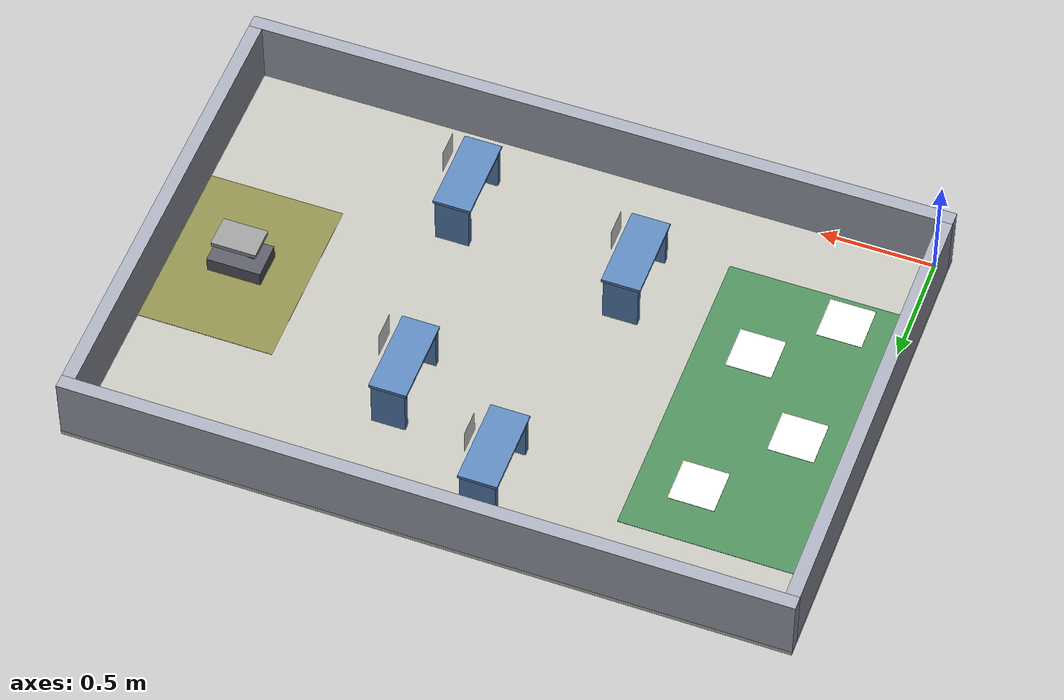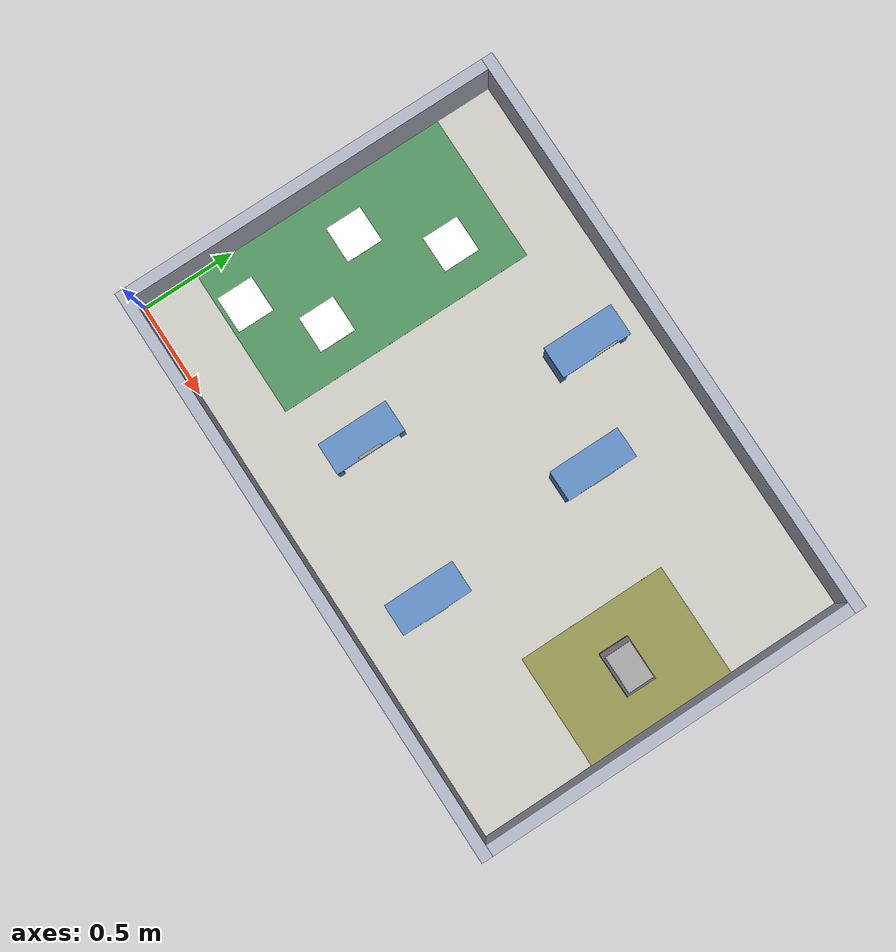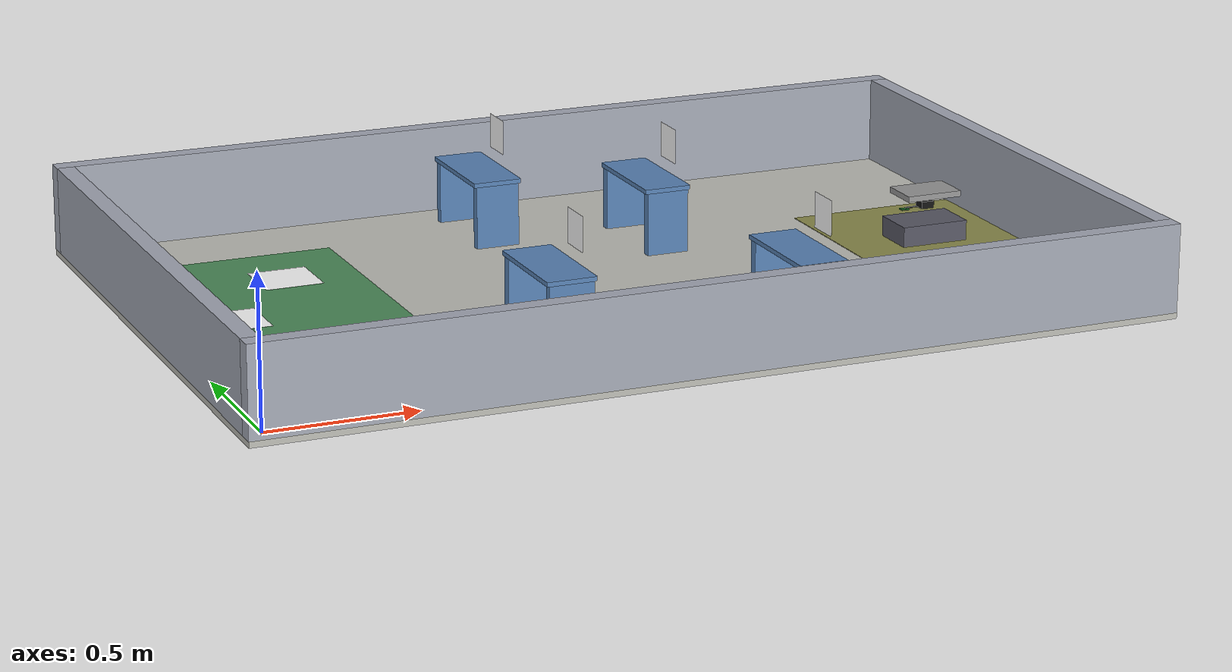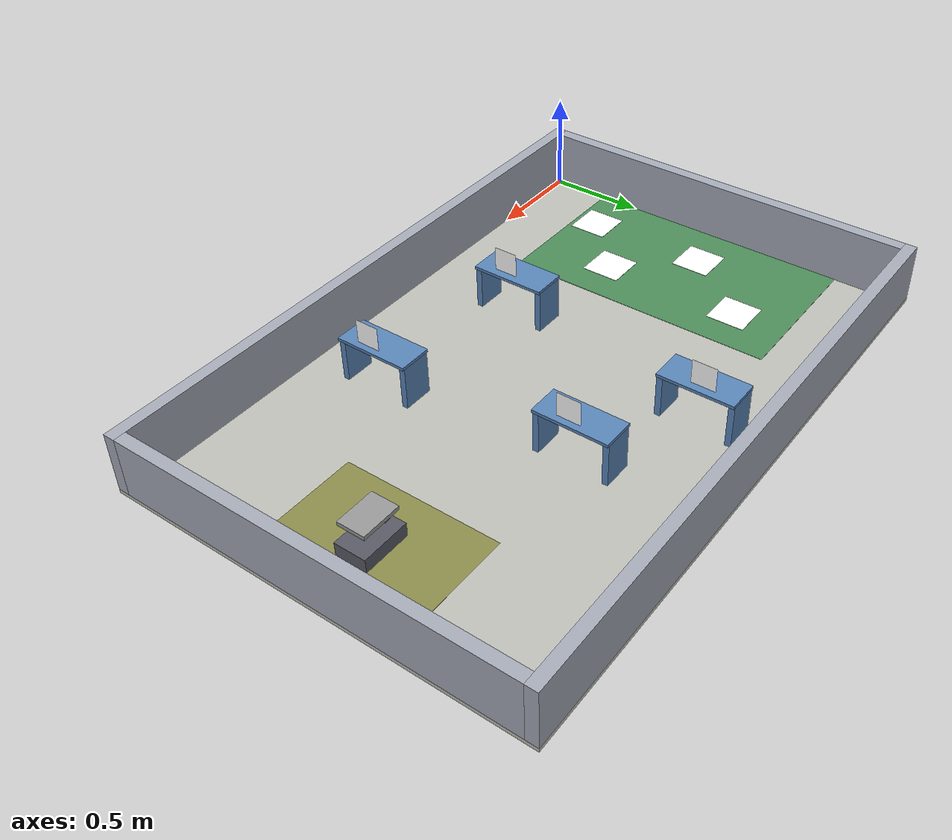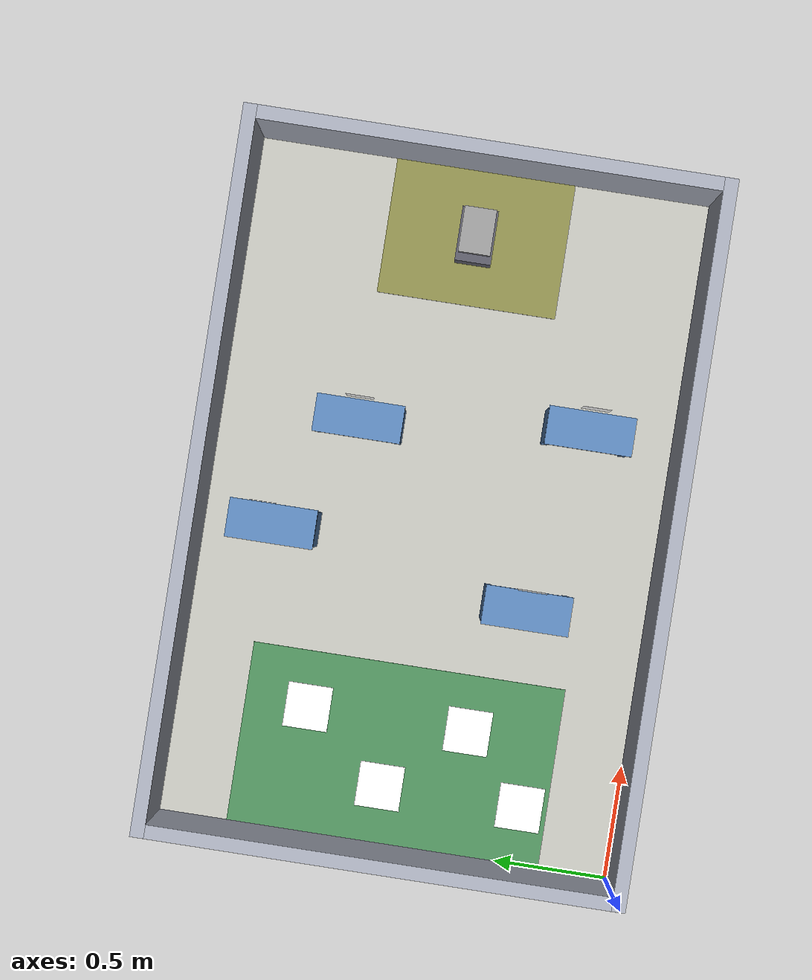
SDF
<?xml version='1.0' encoding='utf-8'?>
<sdf version="1.9">
  <world name="rack_world">
    <gravity>0 0 -9.8</gravity>
    <physics name="physics" type="ignored">
      <max_step_size>0.002</max_step_size>
      <real_time_factor>1</real_time_factor>
    </physics>
    <plugin filename="gz-sim-physics-system" name="gz::sim::systems::Physics" />
    <plugin filename="gz-sim-user-commands-system" name="gz::sim::systems::UserCommands" />
    <plugin filename="gz-sim-scene-broadcaster-system" name="gz::sim::systems::SceneBroadcaster" />
    <plugin filename="gz-sim-sensors-system" name="gz::sim::systems::Sensors" />
    <light name="sun" type="directional">
      <cast_shadows>false</cast_shadows>
      <pose>0 0 10 0 0 0</pose>
      <diffuse>.9 .9 .9 1</diffuse>
      <specular>.1 .1 .1 1</specular>
      <direction>0 0 -1</direction>
    </light>
    <scene>
      <ambient>.8 .8 .8 1</ambient>
      <background>.7 .7 .7 1</background>
      <grid>false</grid>
    </scene>
    <model name="ground">
      <static>true</static>
      <link name="link">
        <collision name="ground_collision">
          <pose>1.51 1.0 -0.01 0 0 0</pose>
          <geometry>
            <box>
              <size>3.14 2.12 0.02</size>
            </box>
          </geometry>
          <surface>
            <contact>
              <collide_bitmask>0xFFFF</collide_bitmask>
            </contact>
          </surface>
        </collision>
        <visual name="ground_visual">
          <pose>1.51 1.0 -0.01 0 0 0</pose>
          <geometry>
            <box>
              <size>3.14 2.12 0.02</size>
            </box>
          </geometry>
          <material>
            <ambient>.75 .75 .72 1</ambient>
            <diffuse>.75 .75 .72 1</diffuse>
          </material>
        </visual>
      </link>
    </model>
    <model name="wall_n">
      <static>true</static>
      <link name="link">
        <collision name="wall_n_collision">
          <pose>1.51 2.03 0.15 0 0 0</pose>
          <geometry>
            <box>
              <size>3.14 0.06 0.3</size>
            </box>
          </geometry>
          <surface>
            <contact>
              <collide_bitmask>0xFFFF</collide_bitmask>
            </contact>
          </surface>
        </collision>
        <visual name="wall_n_visual">
          <pose>1.51 2.03 0.15 0 0 0</pose>
          <geometry>
            <box>
              <size>3.14 0.06 0.3</size>
            </box>
          </geometry>
          <material>
            <ambient>.65 .67 .72 1</ambient>
            <diffuse>.65 .67 .72 1</diffuse>
          </material>
        </visual>
      </link>
    </model>
    <model name="wall_s">
      <static>true</static>
      <link name="link">
        <collision name="wall_s_collision">
          <pose>1.51 -0.03 0.15 0 0 0</pose>
          <geometry>
            <box>
              <size>3.14 0.06 0.3</size>
            </box>
          </geometry>
          <surface>
            <contact>
              <collide_bitmask>0xFFFF</collide_bitmask>
            </contact>
          </surface>
        </collision>
        <visual name="wall_s_visual">
          <pose>1.51 -0.03 0.15 0 0 0</pose>
          <geometry>
            <box>
              <size>3.14 0.06 0.3</size>
            </box>
          </geometry>
          <material>
            <ambient>.65 .67 .72 1</ambient>
            <diffuse>.65 .67 .72 1</diffuse>
          </material>
        </visual>
      </link>
    </model>
    <model name="wall_w">
      <static>true</static>
      <link name="link">
        <collision name="wall_w_collision">
          <pose>-0.03 1.0 0.15 0 0 0</pose>
          <geometry>
            <box>
              <size>0.06 2.0 0.3</size>
            </box>
          </geometry>
          <surface>
            <contact>
              <collide_bitmask>0xFFFF</collide_bitmask>
            </contact>
          </surface>
        </collision>
        <visual name="wall_w_visual">
          <pose>-0.03 1.0 0.15 0 0 0</pose>
          <geometry>
            <box>
              <size>0.06 2.0 0.3</size>
            </box>
          </geometry>
          <material>
            <ambient>.65 .67 .72 1</ambient>
            <diffuse>.65 .67 .72 1</diffuse>
          </material>
        </visual>
      </link>
    </model>
    <model name="wall_e">
      <static>true</static>
      <link name="link">
        <collision name="wall_e_collision">
          <pose>3.05 1.0 0.15 0 0 0</pose>
          <geometry>
            <box>
              <size>0.06 2.0 0.3</size>
            </box>
          </geometry>
          <surface>
            <contact>
              <collide_bitmask>0xFFFF</collide_bitmask>
            </contact>
          </surface>
        </collision>
        <visual name="wall_e_visual">
          <pose>3.05 1.0 0.15 0 0 0</pose>
          <geometry>
            <box>
              <size>0.06 2.0 0.3</size>
            </box>
          </geometry>
          <material>
            <ambient>.65 .67 .72 1</ambient>
            <diffuse>.65 .67 .72 1</diffuse>
          </material>
        </visual>
      </link>
    </model>
    <model name="start_zone">
      <static>true</static>
      <link name="link">
        <visual name="start_zone_visual">
          <pose>2.7199999999999998 1.0 0.001 0 0 0</pose>
          <geometry>
            <box>
              <size>0.6000000000000001 0.7999999999999999 0.002</size>
            </box>
          </geometry>
          <material>
            <ambient>.55 .55 .3 1</ambient>
            <diffuse>.55 .55 .3 1</diffuse>
          </material>
        </visual>
      </link>
    </model>
    <model name="end_zone">
      <static>true</static>
      <link name="link">
        <visual name="end_zone_visual">
          <pose>0.4 1.0 0.001 0 0 0</pose>
          <geometry>
            <box>
              <size>0.8 1.4 0.002</size>
            </box>
          </geometry>
          <material>
            <ambient>.3 .55 .35 1</ambient>
            <diffuse>.3 .55 .35 1</diffuse>
          </material>
        </visual>
      </link>
    </model>
    <model name="drop_a">
      <static>true</static>
      <link name="link">
        <visual name="drop_a_visual">
          <pose>0.25 0.42 0.002 0 0 0</pose>
          <geometry>
            <box>
              <size>0.2 0.2 0.002</size>
            </box>
          </geometry>
          <material>
            <ambient>1 1 1 1</ambient>
            <diffuse>1 1 1 1</diffuse>
          </material>
        </visual>
      </link>
    </model>
    <model name="drop_b">
      <static>true</static>
      <link name="link">
        <visual name="drop_b_visual">
          <pose>0.25 1.05 0.002 0 0 0</pose>
          <geometry>
            <box>
              <size>0.2 0.2 0.002</size>
            </box>
          </geometry>
          <material>
            <ambient>1 1 1 1</ambient>
            <diffuse>1 1 1 1</diffuse>
          </material>
        </visual>
      </link>
    </model>
    <model name="drop_c">
      <static>true</static>
      <link name="link">
        <visual name="drop_c_visual">
          <pose>0.55 0.7 0.002 0 0 0</pose>
          <geometry>
            <box>
              <size>0.2 0.2 0.002</size>
            </box>
          </geometry>
          <material>
            <ambient>1 1 1 1</ambient>
            <diffuse>1 1 1 1</diffuse>
          </material>
        </visual>
      </link>
    </model>
    <model name="drop_d">
      <static>true</static>
      <link name="link">
        <visual name="drop_d_visual">
          <pose>0.55 1.42 0.002 0 0 0</pose>
          <geometry>
            <box>
              <size>0.2 0.2 0.002</size>
            </box>
          </geometry>
          <material>
            <ambient>1 1 1 1</ambient>
            <diffuse>1 1 1 1</diffuse>
          </material>
        </visual>
      </link>
    </model>
    <model name="rack_a">
      <pose>1.1360000000000001 0.54 0 0 0 0</pose>
      <static>true</static>
      <link name="top">
        <pose>0 0 0.225 0 0 0</pose>
        <gravity>false</gravity>
        <inertial>
          <mass>1.0</mass>
          <inertia>
            <ixx>0.01192575</ixx>
            <iyy>0.0024270833333333375</iyy>
            <izz>0.014315333333333338</izz>
            <ixy>0</ixy>
            <ixz>0</ixz>
            <iyz>0</iyz>
          </inertia>
        </inertial>
        <collision name="top_collision">
          <pose>0 0 0 0 0 0</pose>
          <geometry>
            <box>
              <size>0.17000000000000015 0.378 0.015</size>
            </box>
          </geometry>
          <surface>
            <contact>
              <collide_bitmask>0x0002</collide_bitmask>
            </contact>
          </surface>
        </collision>
        <visual name="top_visual">
          <pose>0 0 0 0 0 0</pose>
          <geometry>
            <box>
              <size>0.17000000000000015 0.378 0.015</size>
            </box>
          </geometry>
          <material>
            <ambient>.35 .52 .72 1</ambient>
            <diffuse>.35 .52 .72 1</diffuse>
          </material>
        </visual>
      </link>
      <link name="leg_0">
        <pose>0 -0.17400000000000004 0.10875000000000001 0 0 0</pose>
        <gravity>false</gravity>
        <inertial>
          <mass>0.2</mass>
          <inertia>
            <ixx>0.0008034375000000003</ixx>
            <iyy>0.001178587500000001</iyy>
            <izz>0.00040515000000000077</izz>
            <ixy>0</ixy>
            <ixz>0</ixz>
            <iyz>0</iyz>
          </inertia>
        </inertial>
        <collision name="leg_0_collision">
          <pose>0 0 0 0 0 0</pose>
          <geometry>
            <box>
              <size>0.15300000000000014 0.03 0.21750000000000003</size>
            </box>
          </geometry>
          <surface>
            <contact>
              <collide_bitmask>0x0002</collide_bitmask>
            </contact>
          </surface>
        </collision>
        <visual name="leg_0_visual">
          <pose>0 0 0 0 0 0</pose>
          <geometry>
            <box>
              <size>0.15300000000000014 0.03 0.21750000000000003</size>
            </box>
          </geometry>
          <material>
            <ambient>.35 .52 .72 1</ambient>
            <diffuse>.35 .52 .72 1</diffuse>
          </material>
        </visual>
      </link>
      <joint name="top_leg_0_fixed" type="fixed">
        <parent>top</parent>
        <child>leg_0</child>
      </joint>
      <link name="leg_1">
        <pose>0 0.17399999999999993 0.10875000000000001 0 0 0</pose>
        <gravity>false</gravity>
        <inertial>
          <mass>0.2</mass>
          <inertia>
            <ixx>0.0008034375000000003</ixx>
            <iyy>0.001178587500000001</iyy>
            <izz>0.00040515000000000077</izz>
            <ixy>0</ixy>
            <ixz>0</ixz>
            <iyz>0</iyz>
          </inertia>
        </inertial>
        <collision name="leg_1_collision">
          <pose>0 0 0 0 0 0</pose>
          <geometry>
            <box>
              <size>0.15300000000000014 0.03 0.21750000000000003</size>
            </box>
          </geometry>
          <surface>
            <contact>
              <collide_bitmask>0x0002</collide_bitmask>
            </contact>
          </surface>
        </collision>
        <visual name="leg_1_visual">
          <pose>0 0 0 0 0 0</pose>
          <geometry>
            <box>
              <size>0.15300000000000014 0.03 0.21750000000000003</size>
            </box>
          </geometry>
          <material>
            <ambient>.35 .52 .72 1</ambient>
            <diffuse>.35 .52 .72 1</diffuse>
          </material>
        </visual>
      </link>
      <joint name="top_leg_1_fixed" type="fixed">
        <parent>top</parent>
        <child>leg_1</child>
      </joint>
      <link name="qr">
        <pose>0.08899999999999997 0.0 0.3325 0 0 0</pose>
        <gravity>false</gravity>
        <inertial>
          <mass>0.02</mass>
          <inertia>
            <ixx>4.8e-05</ixx>
            <iyy>2.400666666666667e-05</iyy>
            <izz>2.400666666666667e-05</izz>
            <ixy>0</ixy>
            <ixz>0</ixz>
            <iyz>0</iyz>
          </inertia>
        </inertial>
        <visual name="qr_code">
          <geometry>
            <plane>
              <normal>1 0 0</normal>
              <size>0.12 0.12</size>
            </plane>
          </geometry>
          <material>
            <ambient>1 1 1 1</ambient>
            <diffuse>1 1 1 1</diffuse>
            <pbr>
              <metal>
                <albedo_map>../materials/qr_a.png</albedo_map>
                <metalness>0</metalness>
                <roughness>1</roughness>
              </metal>
            </pbr>
          </material>
        </visual>
      </link>
      <joint name="top_qr_fixed" type="fixed">
        <parent>top</parent>
        <child>qr</child>
      </joint>
    </model>
    <model name="rack_b">
      <pose>1.838 1.3795000000000002 0 0 0 0</pose>
      <static>true</static>
      <link name="top">
        <pose>0 0 0.225 0 0 0</pose>
        <gravity>false</gravity>
        <inertial>
          <mass>1.0</mass>
          <inertia>
            <ixx>0.012115500000000001</ixx>
            <iyy>0.0022600833333333314</iyy>
            <izz>0.014338083333333333</izz>
            <ixy>0</ixy>
            <ixz>0</ixz>
            <iyz>0</iyz>
          </inertia>
        </inertial>
        <collision name="top_collision">
          <pose>0 0 0 0 0 0</pose>
          <geometry>
            <box>
              <size>0.16399999999999992 0.381 0.015</size>
            </box>
          </geometry>
          <surface>
            <contact>
              <collide_bitmask>0x0002</collide_bitmask>
            </contact>
          </surface>
        </collision>
        <visual name="top_visual">
          <pose>0 0 0 0 0 0</pose>
          <geometry>
            <box>
              <size>0.16399999999999992 0.381 0.015</size>
            </box>
          </geometry>
          <material>
            <ambient>.35 .52 .72 1</ambient>
            <diffuse>.35 .52 .72 1</diffuse>
          </material>
        </visual>
      </link>
      <link name="leg_0">
        <pose>0 -0.1755000000000002 0.10875000000000001 0 0 0</pose>
        <gravity>false</gravity>
        <inertial>
          <mass>0.2</mass>
          <inertia>
            <ixx>0.0008034375000000003</ixx>
            <iyy>0.0011515335000000001</iyy>
            <izz>0.00037809599999999964</izz>
            <ixy>0</ixy>
            <ixz>0</ixz>
            <iyz>0</iyz>
          </inertia>
        </inertial>
        <collision name="leg_0_collision">
          <pose>0 0 0 0 0 0</pose>
          <geometry>
            <box>
              <size>0.14759999999999993 0.03 0.21750000000000003</size>
            </box>
          </geometry>
          <surface>
            <contact>
              <collide_bitmask>0x0002</collide_bitmask>
            </contact>
          </surface>
        </collision>
        <visual name="leg_0_visual">
          <pose>0 0 0 0 0 0</pose>
          <geometry>
            <box>
              <size>0.14759999999999993 0.03 0.21750000000000003</size>
            </box>
          </geometry>
          <material>
            <ambient>.35 .52 .72 1</ambient>
            <diffuse>.35 .52 .72 1</diffuse>
          </material>
        </visual>
      </link>
      <joint name="top_leg_0_fixed" type="fixed">
        <parent>top</parent>
        <child>leg_0</child>
      </joint>
      <link name="leg_1">
        <pose>0 0.1755 0.10875000000000001 0 0 0</pose>
        <gravity>false</gravity>
        <inertial>
          <mass>0.2</mass>
          <inertia>
            <ixx>0.0008034375000000003</ixx>
            <iyy>0.0011515335000000001</iyy>
            <izz>0.00037809599999999964</izz>
            <ixy>0</ixy>
            <ixz>0</ixz>
            <iyz>0</iyz>
          </inertia>
        </inertial>
        <collision name="leg_1_collision">
          <pose>0 0 0 0 0 0</pose>
          <geometry>
            <box>
              <size>0.14759999999999993 0.03 0.21750000000000003</size>
            </box>
          </geometry>
          <surface>
            <contact>
              <collide_bitmask>0x0002</collide_bitmask>
            </contact>
          </surface>
        </collision>
        <visual name="leg_1_visual">
          <pose>0 0 0 0 0 0</pose>
          <geometry>
            <box>
              <size>0.14759999999999993 0.03 0.21750000000000003</size>
            </box>
          </geometry>
          <material>
            <ambient>.35 .52 .72 1</ambient>
            <diffuse>.35 .52 .72 1</diffuse>
          </material>
        </visual>
      </link>
      <joint name="top_leg_1_fixed" type="fixed">
        <parent>top</parent>
        <child>leg_1</child>
      </joint>
      <link name="qr">
        <pose>0.08599999999999985 -2.220446049250313e-16 0.3325 0 0 0</pose>
        <gravity>false</gravity>
        <inertial>
          <mass>0.02</mass>
          <inertia>
            <ixx>4.8e-05</ixx>
            <iyy>2.400666666666667e-05</iyy>
            <izz>2.400666666666667e-05</izz>
            <ixy>0</ixy>
            <ixz>0</ixz>
            <iyz>0</iyz>
          </inertia>
        </inertial>
        <visual name="qr_code">
          <geometry>
            <plane>
              <normal>1 0 0</normal>
              <size>0.12 0.12</size>
            </plane>
          </geometry>
          <material>
            <ambient>1 1 1 1</ambient>
            <diffuse>1 1 1 1</diffuse>
            <pbr>
              <metal>
                <albedo_map>../materials/qr_b.png</albedo_map>
                <metalness>0</metalness>
                <roughness>1</roughness>
              </metal>
            </pbr>
          </material>
        </visual>
      </link>
      <joint name="top_qr_fixed" type="fixed">
        <parent>top</parent>
        <child>qr</child>
      </joint>
    </model>
    <model name="rack_c">
      <pose>1.337 1.6795 0 0 0 0</pose>
      <static>true</static>
      <link name="top">
        <pose>0 0 0.225 0 0 0</pose>
        <gravity>false</gravity>
        <inertial>
          <mass>1.0</mass>
          <inertia>
            <ixx>0.012115500000000001</ixx>
            <iyy>0.002427083333333331</iyy>
            <izz>0.014505083333333333</izz>
            <ixy>0</ixy>
            <ixz>0</ixz>
            <iyz>0</iyz>
          </inertia>
        </inertial>
        <collision name="top_collision">
          <pose>0 0 0 0 0 0</pose>
          <geometry>
            <box>
              <size>0.16999999999999993 0.381 0.015</size>
            </box>
          </geometry>
          <surface>
            <contact>
              <collide_bitmask>0x0002</collide_bitmask>
            </contact>
          </surface>
        </collision>
        <visual name="top_visual">
          <pose>0 0 0 0 0 0</pose>
          <geometry>
            <box>
              <size>0.16999999999999993 0.381 0.015</size>
            </box>
          </geometry>
          <material>
            <ambient>.35 .52 .72 1</ambient>
            <diffuse>.35 .52 .72 1</diffuse>
          </material>
        </visual>
      </link>
      <link name="leg_0">
        <pose>0 -0.1755 0.10875000000000001 0 0 0</pose>
        <gravity>false</gravity>
        <inertial>
          <mass>0.2</mass>
          <inertia>
            <ixx>0.0008034375000000003</ixx>
            <iyy>0.0011785875</iyy>
            <izz>0.00040514999999999974</izz>
            <ixy>0</ixy>
            <ixz>0</ixz>
            <iyz>0</iyz>
          </inertia>
        </inertial>
        <collision name="leg_0_collision">
          <pose>0 0 0 0 0 0</pose>
          <geometry>
            <box>
              <size>0.15299999999999994 0.03 0.21750000000000003</size>
            </box>
          </geometry>
          <surface>
            <contact>
              <collide_bitmask>0x0002</collide_bitmask>
            </contact>
          </surface>
        </collision>
        <visual name="leg_0_visual">
          <pose>0 0 0 0 0 0</pose>
          <geometry>
            <box>
              <size>0.15299999999999994 0.03 0.21750000000000003</size>
            </box>
          </geometry>
          <material>
            <ambient>.35 .52 .72 1</ambient>
            <diffuse>.35 .52 .72 1</diffuse>
          </material>
        </visual>
      </link>
      <joint name="top_leg_0_fixed" type="fixed">
        <parent>top</parent>
        <child>leg_0</child>
      </joint>
      <link name="leg_1">
        <pose>0 0.1755000000000002 0.10875000000000001 0 0 0</pose>
        <gravity>false</gravity>
        <inertial>
          <mass>0.2</mass>
          <inertia>
            <ixx>0.0008034375000000003</ixx>
            <iyy>0.0011785875</iyy>
            <izz>0.00040514999999999974</izz>
            <ixy>0</ixy>
            <ixz>0</ixz>
            <iyz>0</iyz>
          </inertia>
        </inertial>
        <collision name="leg_1_collision">
          <pose>0 0 0 0 0 0</pose>
          <geometry>
            <box>
              <size>0.15299999999999994 0.03 0.21750000000000003</size>
            </box>
          </geometry>
          <surface>
            <contact>
              <collide_bitmask>0x0002</collide_bitmask>
            </contact>
          </surface>
        </collision>
        <visual name="leg_1_visual">
          <pose>0 0 0 0 0 0</pose>
          <geometry>
            <box>
              <size>0.15299999999999994 0.03 0.21750000000000003</size>
            </box>
          </geometry>
          <material>
            <ambient>.35 .52 .72 1</ambient>
            <diffuse>.35 .52 .72 1</diffuse>
          </material>
        </visual>
      </link>
      <joint name="top_leg_1_fixed" type="fixed">
        <parent>top</parent>
        <child>leg_1</child>
      </joint>
      <link name="qr">
        <pose>0.08899999999999997 0.04049999999999998 0.3325 0 0 0</pose>
        <gravity>false</gravity>
        <inertial>
          <mass>0.02</mass>
          <inertia>
            <ixx>4.8e-05</ixx>
            <iyy>2.400666666666667e-05</iyy>
            <izz>2.400666666666667e-05</izz>
            <ixy>0</ixy>
            <ixz>0</ixz>
            <iyz>0</iyz>
          </inertia>
        </inertial>
        <visual name="qr_code">
          <geometry>
            <plane>
              <normal>1 0 0</normal>
              <size>0.12 0.12</size>
            </plane>
          </geometry>
          <material>
            <ambient>1 1 1 1</ambient>
            <diffuse>1 1 1 1</diffuse>
            <pbr>
              <metal>
                <albedo_map>../materials/qr_c.png</albedo_map>
                <metalness>0</metalness>
                <roughness>1</roughness>
              </metal>
            </pbr>
          </material>
        </visual>
      </link>
      <joint name="top_qr_fixed" type="fixed">
        <parent>top</parent>
        <child>qr</child>
      </joint>
    </model>
    <model name="rack_d">
      <pose>1.9365 0.39 0 0 0 0</pose>
      <static>true</static>
      <link name="top">
        <pose>0 0 0.225 0 0 0</pose>
        <gravity>false</gravity>
        <inertial>
          <mass>1.0</mass>
          <inertia>
            <ixx>0.011925749999999997</ixx>
            <iyy>0.0023428333333333344</iyy>
            <izz>0.01423108333333333</izz>
            <ixy>0</ixy>
            <ixz>0</ixz>
            <iyz>0</iyz>
          </inertia>
        </inertial>
        <collision name="top_collision">
          <pose>0 0 0 0 0 0</pose>
          <geometry>
            <box>
              <size>0.16700000000000004 0.37799999999999995 0.015</size>
            </box>
          </geometry>
          <surface>
            <contact>
              <collide_bitmask>0x0002</collide_bitmask>
            </contact>
          </surface>
        </collision>
        <visual name="top_visual">
          <pose>0 0 0 0 0 0</pose>
          <geometry>
            <box>
              <size>0.16700000000000004 0.37799999999999995 0.015</size>
            </box>
          </geometry>
          <material>
            <ambient>.35 .52 .72 1</ambient>
            <diffuse>.35 .52 .72 1</diffuse>
          </material>
        </visual>
      </link>
      <link name="leg_0">
        <pose>0 -0.174 0.10875000000000001 0 0 0</pose>
        <gravity>false</gravity>
        <inertial>
          <mass>0.2</mass>
          <inertia>
            <ixx>0.0008034375000000003</ixx>
            <iyy>0.0011649390000000005</iyy>
            <izz>0.00039150150000000027</izz>
            <ixy>0</ixy>
            <ixz>0</ixz>
            <iyz>0</iyz>
          </inertia>
        </inertial>
        <collision name="leg_0_collision">
          <pose>0 0 0 0 0 0</pose>
          <geometry>
            <box>
              <size>0.15030000000000004 0.03 0.21750000000000003</size>
            </box>
          </geometry>
          <surface>
            <contact>
              <collide_bitmask>0x0002</collide_bitmask>
            </contact>
          </surface>
        </collision>
        <visual name="leg_0_visual">
          <pose>0 0 0 0 0 0</pose>
          <geometry>
            <box>
              <size>0.15030000000000004 0.03 0.21750000000000003</size>
            </box>
          </geometry>
          <material>
            <ambient>.35 .52 .72 1</ambient>
            <diffuse>.35 .52 .72 1</diffuse>
          </material>
        </visual>
      </link>
      <joint name="top_leg_0_fixed" type="fixed">
        <parent>top</parent>
        <child>leg_0</child>
      </joint>
      <link name="leg_1">
        <pose>0 0.17399999999999993 0.10875000000000001 0 0 0</pose>
        <gravity>false</gravity>
        <inertial>
          <mass>0.2</mass>
          <inertia>
            <ixx>0.0008034375000000003</ixx>
            <iyy>0.0011649390000000005</iyy>
            <izz>0.00039150150000000027</izz>
            <ixy>0</ixy>
            <ixz>0</ixz>
            <iyz>0</iyz>
          </inertia>
        </inertial>
        <collision name="leg_1_collision">
          <pose>0 0 0 0 0 0</pose>
          <geometry>
            <box>
              <size>0.15030000000000004 0.03 0.21750000000000003</size>
            </box>
          </geometry>
          <surface>
            <contact>
              <collide_bitmask>0x0002</collide_bitmask>
            </contact>
          </surface>
        </collision>
        <visual name="leg_1_visual">
          <pose>0 0 0 0 0 0</pose>
          <geometry>
            <box>
              <size>0.15030000000000004 0.03 0.21750000000000003</size>
            </box>
          </geometry>
          <material>
            <ambient>.35 .52 .72 1</ambient>
            <diffuse>.35 .52 .72 1</diffuse>
          </material>
        </visual>
      </link>
      <joint name="top_leg_1_fixed" type="fixed">
        <parent>top</parent>
        <child>leg_1</child>
      </joint>
      <link name="qr">
        <pose>0.08749999999999991 0.0 0.3325 0 0 0</pose>
        <gravity>false</gravity>
        <inertial>
          <mass>0.02</mass>
          <inertia>
            <ixx>4.8e-05</ixx>
            <iyy>2.400666666666667e-05</iyy>
            <izz>2.400666666666667e-05</izz>
            <ixy>0</ixy>
            <ixz>0</ixz>
            <iyz>0</iyz>
          </inertia>
        </inertial>
        <visual name="qr_code">
          <geometry>
            <plane>
              <normal>1 0 0</normal>
              <size>0.12 0.12</size>
            </plane>
          </geometry>
          <material>
            <ambient>1 1 1 1</ambient>
            <diffuse>1 1 1 1</diffuse>
            <pbr>
              <metal>
                <albedo_map>../materials/qr_d.png</albedo_map>
                <metalness>0</metalness>
                <roughness>1</roughness>
              </metal>
            </pbr>
          </material>
        </visual>
      </link>
      <joint name="top_qr_fixed" type="fixed">
        <parent>top</parent>
        <child>qr</child>
      </joint>
    </model>
    <model name="robot" canonical_link="base_link">
      <pose>2.72 1.0 0 0 0 3.141592653589793</pose>
      <link name="x_slide">
        <gravity>false</gravity>
        <inertial>
          <mass>0.01</mass>
          <inertia>
            <ixx>1.666666666666667e-07</ixx>
            <iyy>1.666666666666667e-07</iyy>
            <izz>1.666666666666667e-07</izz>
            <ixy>0</ixy>
            <ixz>0</ixz>
            <iyz>0</iyz>
          </inertia>
        </inertial>
      </link>
      <link name="y_slide">
        <gravity>false</gravity>
        <inertial>
          <mass>0.01</mass>
          <inertia>
            <ixx>1.666666666666667e-07</ixx>
            <iyy>1.666666666666667e-07</iyy>
            <izz>1.666666666666667e-07</izz>
            <ixy>0</ixy>
            <ixz>0</ixz>
            <iyz>0</iyz>
          </inertia>
        </inertial>
      </link>
      <joint name="chassis_x" type="prismatic">
        <parent>world</parent>
        <child>x_slide</child>
        <axis>
          <xyz expressed_in="__model__">-1 0 0</xyz>
          <limit>
            <lower>-2.6</lower>
            <upper>0.17999999999999983</upper>
            <effort>1000</effort>
            <velocity>1</velocity>
          </limit>
        </axis>
      </joint>
      <joint name="chassis_y" type="prismatic">
        <parent>x_slide</parent>
        <child>y_slide</child>
        <axis>
          <xyz expressed_in="__model__">0 -1 0</xyz>
          <limit>
            <lower>-0.92</lower>
            <upper>0.92</upper>
            <effort>1000</effort>
            <velocity>1</velocity>
          </limit>
        </axis>
      </joint>
      <joint name="chassis_yaw" type="revolute">
        <parent>y_slide</parent>
        <child>base_link</child>
        <axis>
          <xyz expressed_in="__model__">0 0 1</xyz>
          <limit>
            <lower>-0.06</lower>
            <upper>0.5835987755982988</upper>
            <effort>1000</effort>
            <velocity>1</velocity>
          </limit>
        </axis>
      </joint>
      <plugin filename="librack_hybrid_actuator.so" name="rack_simulation::HybridActuator">
        <allow_scan_rotation>true</allow_scan_rotation>
        <field_x>3.02</field_x>
        <field_y>2.0</field_y>
        <half_x>0.12</half_x>
        <half_y>0.08</half_y>
        <initial_yaw>3.141592653589793</initial_yaw>
        <platform_top>0.18</platform_top>
        <payload_bottom>0.21750000000000003</payload_bottom>
        <lift_up>0.3</lift_up>
        <lift_upper>0.4</lift_upper>
        <lift_tolerance>0.008</lift_tolerance>
      </plugin>
      <link name="base_link">
        <gravity>false</gravity>
        <inertial>
          <mass>5.0</mass>
          <inertia>
            <ixx>0.012708333333333335</ixx>
            <iyy>0.026041666666666668</iyy>
            <izz>0.034666666666666665</izz>
            <ixy>0</ixy>
            <ixz>0</ixz>
            <iyz>0</iyz>
          </inertia>
        </inertial>
        <collision name="chassis_collision">
          <pose>0 0 0.04 0 0 0</pose>
          <geometry>
            <box>
              <size>0.24 0.16 0.07</size>
            </box>
          </geometry>
          <surface>
            <contact>
              <collide_bitmask>0x0001</collide_bitmask>
            </contact>
          </surface>
        </collision>
        <visual name="chassis_visual">
          <pose>0 0 0.04 0 0 0</pose>
          <geometry>
            <box>
              <size>0.24 0.16 0.07</size>
            </box>
          </geometry>
          <material>
            <ambient>.35 .35 .4 1</ambient>
            <diffuse>.35 .35 .4 1</diffuse>
          </material>
        </visual>
        <visual name="ms200_housing_visual">
          <pose>0 0 0.1275 0 0 0</pose>
          <geometry>
            <box>
              <size>0.045 0.045 0.025</size>
            </box>
          </geometry>
          <material>
            <ambient>.08 .08 .08 1</ambient>
            <diffuse>.08 .08 .08 1</diffuse>
          </material>
        </visual>
        <visual name="ms200_cable_visual">
          <pose>0.035 -0.024 0.112 0 0 0</pose>
          <geometry>
            <box>
              <size>0.055 0.004 0.004</size>
            </box>
          </geometry>
          <material>
            <ambient>.04 .04 .04 1</ambient>
            <diffuse>.04 .04 .04 1</diffuse>
          </material>
        </visual>
        <visual name="ms200_adapter_visual">
          <pose>0.065 -0.024 0.108 0 0 0</pose>
          <geometry>
            <box>
              <size>0.03 0.022 0.003</size>
            </box>
          </geometry>
          <material>
            <ambient>.1 .4 .15 1</ambient>
            <diffuse>.1 .4 .15 1</diffuse>
          </material>
        </visual>
        <sensor name="camera" type="camera">
          <pose>0.11 0.0 0.32 0 -0.15 0</pose>
          <topic>/camera</topic>
          <update_rate>15</update_rate>
          <always_on>1</always_on>
          <camera>
            <horizontal_fov>1.047</horizontal_fov>
            <image>
              <width>640</width>
              <height>480</height>
              <format>RGB_INT8</format>
            </image>
            <clip>
              <near>0.05</near>
              <far>10</far>
            </clip>
          </camera>
        </sensor>
        <sensor name="ms200" type="gpu_lidar">
          <pose>0 0 0.15 0 0 0</pose>
          <topic>/scan</topic>
          <update_rate>10</update_rate>
          <always_on>1</always_on>
          <visualize>false</visualize>
          <ray>
            <scan>
              <horizontal>
                <samples>720</samples>
                <resolution>1</resolution>
                <min_angle>-3.14159265</min_angle>
                <max_angle>3.14159265</max_angle>
              </horizontal>
            </scan>
            <range>
              <min>0.05</min>
              <max>8.0</max>
              <resolution>0.01</resolution>
            </range>
            <noise>
              <type>gaussian</type>
              <mean>0</mean>
              <stddev>0.005</stddev>
            </noise>
          </ray>
        </sensor>
      </link>
      <link name="lift_platform">
        <pose>0 0 0.16999999999999998 0 0 0</pose>
        <gravity>false</gravity>
        <inertial>
          <mass>0.5</mass>
          <inertia>
            <ixx>0.0008333333333333335</ixx>
            <iyy>0.0016833333333333336</iyy>
            <izz>0.002483333333333334</izz>
            <ixy>0</ixy>
            <ixz>0</ixz>
            <iyz>0</iyz>
          </inertia>
        </inertial>
        <collision name="lift_platform_collision">
          <pose>0 0 0 0 0 0</pose>
          <geometry>
            <box>
              <size>0.2 0.14 0.02</size>
            </box>
          </geometry>
          <surface>
            <contact>
              <collide_bitmask>0x0004</collide_bitmask>
            </contact>
          </surface>
        </collision>
        <visual name="lift_platform_visual">
          <pose>0 0 0 0 0 0</pose>
          <geometry>
            <box>
              <size>0.2 0.14 0.02</size>
            </box>
          </geometry>
          <material>
            <ambient>.6 .6 .6 1</ambient>
            <diffuse>.6 .6 .6 1</diffuse>
          </material>
        </visual>
      </link>
      <joint name="lift_joint" type="prismatic">
        <parent>base_link</parent>
        <child>lift_platform</child>
        <axis>
          <xyz>0 0 1</xyz>
          <limit>
            <lower>0.0</lower>
            <upper>0.4</upper>
            <effort>100</effort>
          </limit>
        </axis>
      </joint>
      <plugin filename="gz-sim-joint-position-controller-system" name="gz::sim::systems::JointPositionController">
        <joint_name>lift_joint</joint_name>
        <topic>/simulation/lift_setpoint</topic>
        <p_gain>100.0</p_gain>
        <i_gain>0</i_gain>
        <d_gain>14.142135623730951</d_gain>
        <i_max>10</i_max>
        <i_min>-10</i_min>
        <initial_position>0.0</initial_position>
      </plugin>
      <plugin filename="gz-sim-joint-state-publisher-system" name="gz::sim::systems::JointStatePublisher" />
    </model>
  </world>
</sdf>
